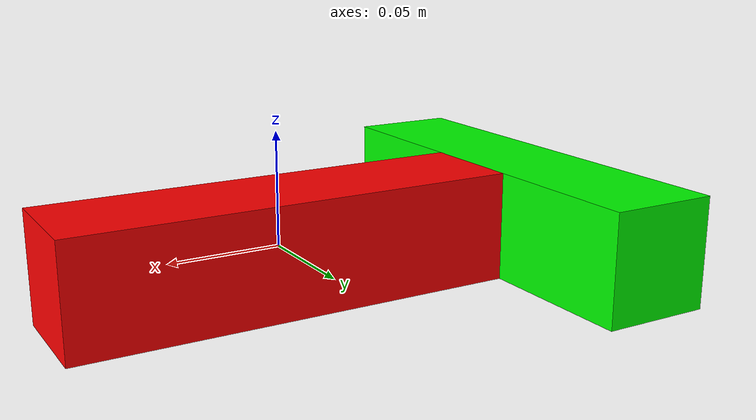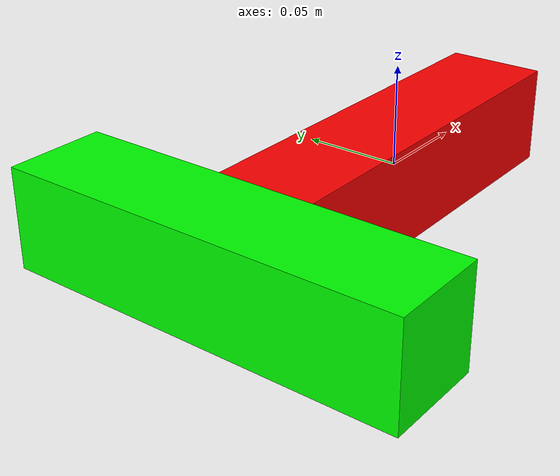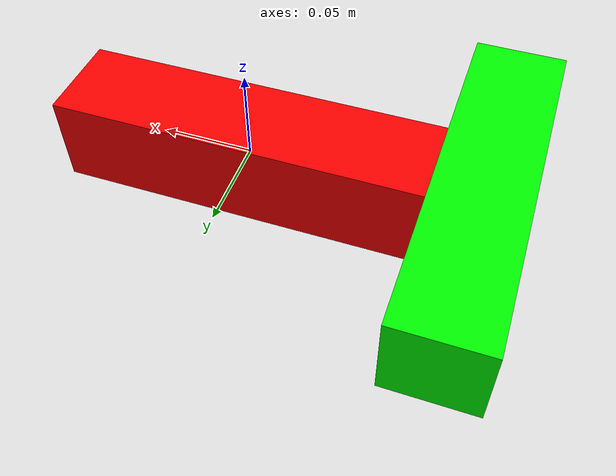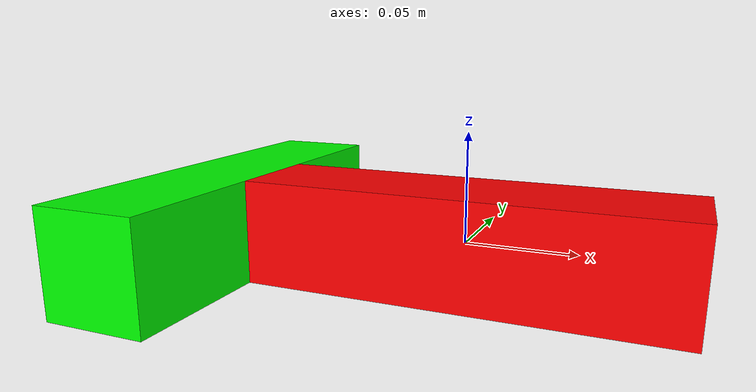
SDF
<?xml version="1.0"?>
<sdf version="1.7">
  <model name="t_shape">

    <link name="vertical_link">
      <visual name="vertical_link">
        <pose>0 0 0 0 0 0</pose>
        <geometry>
          <box>
            <size>0.20 0.05 0.05</size>
          </box>
        </geometry>
        <material>
          <diffuse>1 0 0 1</diffuse>
        </material>
      </visual>
    </link>

    <link name="horizontal_link">
      <visual name="horizontal_link">
        <pose>-0.125 0 0 0 0 1.5708</pose>
        <geometry>
          <box>
            <size>0.20 0.05 0.05</size>
          </box>
        </geometry>
        <material>
          <diffuse>0 1 0 1</diffuse>
        </material>
      </visual>
    </link>

    <joint name="fixed_joint" type="fixed">
      <!-- Parent and child links for the joint -->
      <parent>vertical_link</parent>
      <child>horizontal_link</child>
      <!-- Pose of the joint relative to the parent link -->
      <pose>0 0 0 0 0 0</pose>
    </joint>

  </model>
</sdf>
